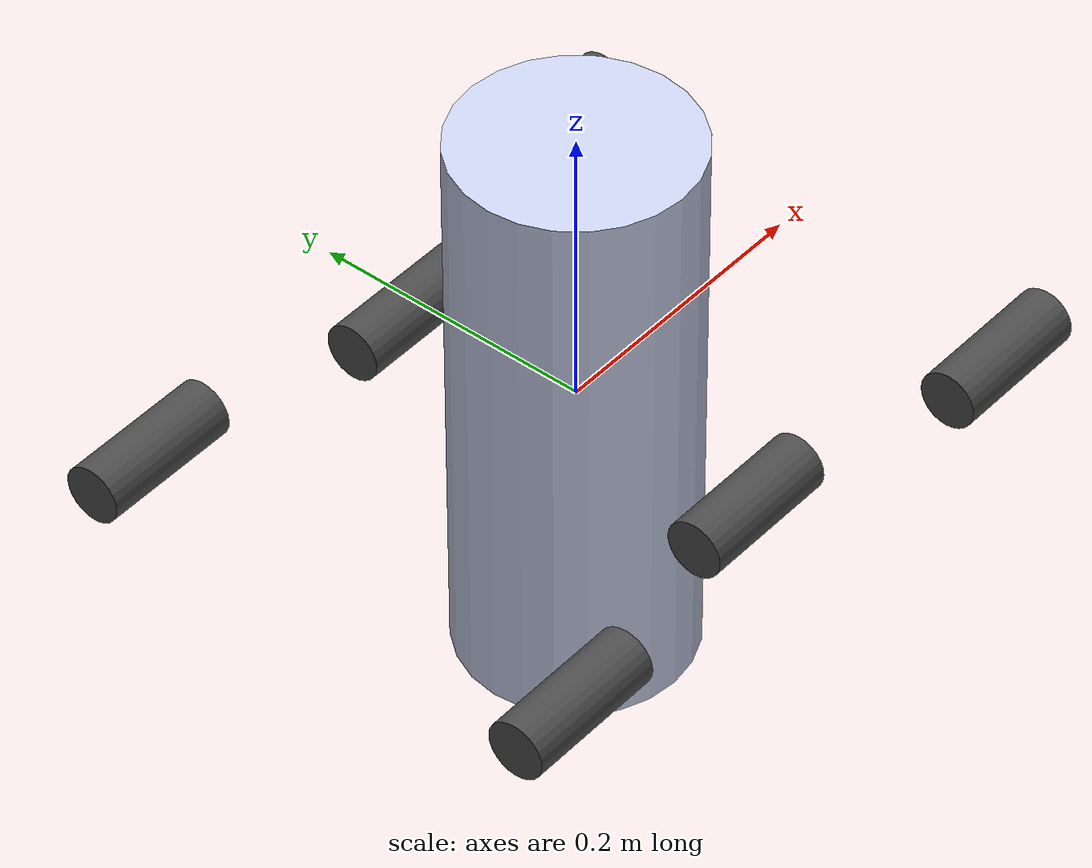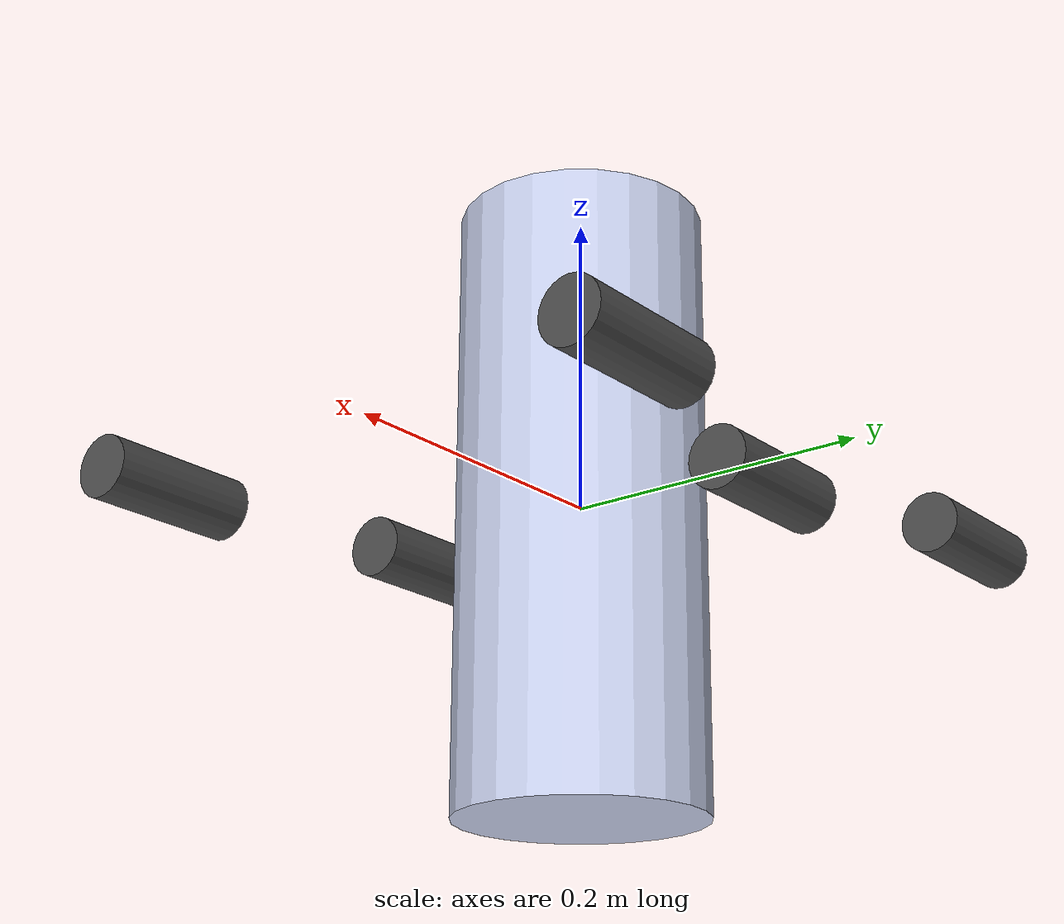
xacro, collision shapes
<?xml version="1.0" encoding="utf-8"?>
<robot name="loco" xmlns:xacro="http://www.ros.org/wiki/xacro">

  <material name="Blue"> <color rgba="0.79 0.82 0.93 1" /> </material>
  <material name="DarkGray"> <color rgba="0.3 0.3 0.3 1" /> </material>
  <material name="White"> <color rgba="1 1 1 1" /> </material>

  <link name="loco_base_frame">
    <inertial>
      <mass value="0.001"/>
      <inertia ixx="0.0001" ixy="0" ixz="0" iyy="0.0001" iyz="0" izz="0.0001"/>
    </inertial>
  </link>

  <joint name="base_frame_to_chassis" type="fixed">
    <parent link="loco_base_frame"/>
    <child link="base_link"/>
    <origin xyz="0 0 0"/>
  </joint>

  <link name="base_link">
    <inertial>
      <origin xyz="0 0 0" rpy="0 0 0" />
      <mass value="1.6284" />
      <inertia ixx="0.02" ixy="0" ixz="0" iyy="0.02" iyz="0" izz="0.02" />
    </inertial>
    <visual>
      <origin xyz="0 0 0" rpy="0 0 0" />
      <geometry> <mesh filename="package://loco_description/meshes/base_link.STL" /> </geometry>
      <material name="Blue" />
    </visual>
    <collision>
      <origin xyz="0 0 0" rpy="0 0 0" />
      <geometry> <cylinder length="0.4" radius="0.08"/> </geometry>
    </collision>
  </link>

  <xacro:macro name="make_thruster" params="suffix stl_file x y z axis_x axis_y axis_z">
    <link name="thruster_${suffix}">
      <inertial>
        <origin xyz="0 0 0" rpy="0 0 0" />
        <mass value="0.1" />
        <inertia ixx="0.001" ixy="0" ixz="0" iyy="0.001" iyz="0" izz="0.001" />
      </inertial>
      <visual>
        <origin xyz="0 0 0" rpy="0 0 0" />
        <geometry> <mesh filename="package://loco_description/meshes/${stl_file}" /> </geometry>
        <material name="DarkGray" />
      </visual>
      <collision>
        <origin xyz="0 0 0" rpy="0 ${pi/2} 0" />
        <geometry> <cylinder length="0.1" radius="0.02"/> </geometry>
      </collision>
    </link>

    <joint name="joint_${suffix}" type="continuous">
      <origin xyz="${x} ${y} ${z}" rpy="0 0 0" />
      <parent link="base_link" />
      <child link="thruster_${suffix}" />
      <axis xyz="${axis_x} ${axis_y} ${axis_z}" />
      <dynamics damping="5.0" friction="2.0"/>
    </joint>

    <gazebo>
      <plugin filename="libgazebo_ros_force.so" name="gazebo_ros_force_${suffix}">
        <ros> <namespace>loco</namespace> <remapping>gazebo_ros_force:=/loco/thruster_${suffix}_cmd</remapping> </ros>
        <link_name>thruster_${suffix}</link_name> <force_frame>link</force_frame>
      </plugin>
    </gazebo>

    <gazebo reference="thruster_${suffix}"> <material>Gazebo/DarkGrey</material> </gazebo>
  </xacro:macro>

  <xacro:make_thruster suffix="fl" stl_file="link_FL.STL" x="0.191" y="0.178" z="-0.002" axis_x="0.707" axis_y="-0.707" axis_z="0" />

  <xacro:make_thruster suffix="fr" stl_file="Link_FR.STL" x="0.190" y="-0.177" z="-0.002" axis_x="0.707" axis_y="0.707" axis_z="0" />

  <xacro:make_thruster suffix="bl" stl_file="Link_BL.STL" x="-0.203" y="0.166" z="-0.002" axis_x="0.707" axis_y="0.707" axis_z="0" />

  <xacro:make_thruster suffix="br" stl_file="Link_BR.STL" x="-0.204" y="-0.166" z="0.000" axis_x="0.707" axis_y="-0.707" axis_z="0" />

  <xacro:make_thruster suffix="cl" stl_file="Link_CL.STL" x="-0.002" y="0.136" z="-0.011" axis_x="0" axis_y="0" axis_z="1" />
  <xacro:make_thruster suffix="cr" stl_file="link_CR.STL" x="-0.003" y="-0.135" z="-0.010" axis_x="0" axis_y="0" axis_z="1" />

  <gazebo reference="base_link">
    <material>Gazebo/GreyTransparent</material>
  </gazebo>

  <gazebo>
    <plugin name="simple_hydrodynamics" filename="libsimple_hydrodynamics.so">
    </plugin>
  </gazebo>

</robot>
